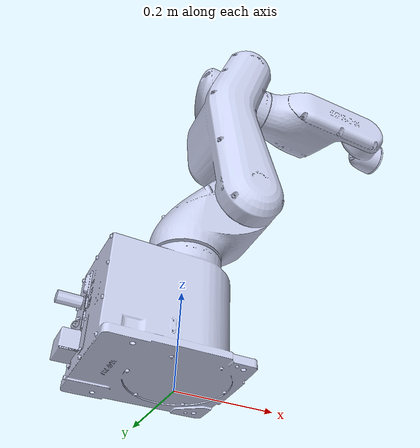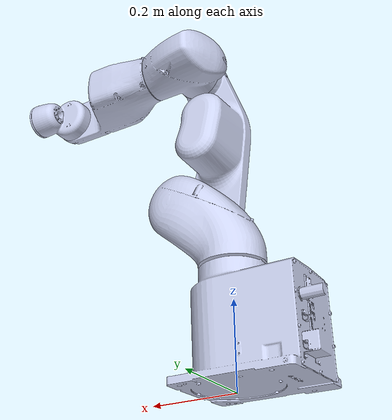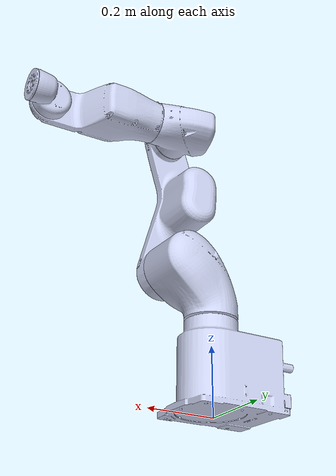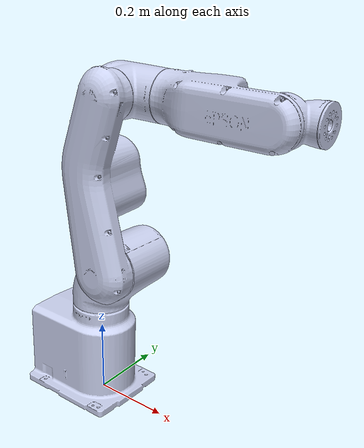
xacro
<?xml version="1.0" encoding="utf-8"?>
<!--
Gunner Cook-Dumas
7/10/25
-->
<robot xmlns:xacro="http://www.ros.org/wiki/xacro">
  <link name="world">
     <origin xyz="0 0 0" rpy="0 0 0"/>
  </link>
  <joint name="world_joint" type="fixed">
    <origin xyz="0 0 0.3" rpy="0 0 0"/>
    <parent link="world"/>
    <child link="base_link"/>
  </joint>

  <link
    name="base_link">
    <inertial>
      <origin
        xyz="-0.044667 -0.0055621 -0.16755"
        rpy="0 0 0" />
      <mass
        value="11.234" />
      <inertia
        ixx="0.091366"
        ixy="0.0001185"
        ixz="-0.0050822"
        iyy="0.12176"
        iyz="-0.00097303"
        izz="0.089699" />
    </inertial>
    <visual>
      <origin
        xyz="0 0 0"
        rpy="0 0 0" />
      <geometry>
        <mesh
          filename="file://$(find epsonvt6_sim)/meshes/base_link.STL" /> <!-- package://epsonvt6_sim/meshes/base_link.STL"-->
      </geometry>
      <material
        name="">
        <color
          rgba="0.79216 0.81961 0.93333 1" />
      </material>
    </visual>
    <collision>
      <origin
        xyz="0 0 0"
        rpy="0 0 0" />
      <geometry>
        <mesh
          filename="file://$(find epsonvt6_sim)/meshes/base_link.STL" />
      </geometry>
    </collision>
  </link>
  <link
    name="swivel_link">
    <inertial>
      <origin
        xyz="0.058809 0.0011943 0.10969"
        rpy="0 0 0" />
      <mass
        value="5.408" />
      <inertia
        ixx="0.027903"
        ixy="0.00011412"
        ixz="-0.0095523"
        iyy="0.035172"
        iyz="-0.00010229"
        izz="0.028875" />
    </inertial>
    <visual>
      <origin
        xyz="0 0 0"
        rpy="0 0 0" />
      <geometry>
        <mesh
          filename="file://$(find epsonvt6_sim)/meshes/swivel_link.STL" />
      </geometry>
      <material
        name="">
        <color
          rgba="0.79216 0.81961 0.93333 1" />
      </material>
    </visual>
    <collision>
      <origin
        xyz="0 0 0"
        rpy="0 0 0" />
      <geometry>
        <mesh
          filename="file://$(find epsonvt6_sim)/meshes/swivel_link.STL" />
      </geometry>
    </collision>
  </link>
  <joint
    name="base_swivel_joint"
    type="continuous">
    <origin
      xyz="0 -0.00083759 -0.023985"
      rpy="-0.034907 0 0" />
    <parent
      link="base_link" />
    <child
      link="swivel_link" />
    <axis
      xyz="0 0 1" />
  </joint>
  <link
    name="swivel_arm_link">
    <inertial>
      <origin
        xyz="-0.0185051285247269 0.0100310897931204 0.208488538519217"
        rpy="0 0 0" />
      <mass
        value="1.67529418945548" />
      <inertia
        ixx="0.0507941794857386"
        ixy="0.000730302175823613"
        ixz="0.000302256342382312"
        iyy="0.0504029422658477"
        iyz="2.07822625557631E-05"
        izz="0.00701923736777324" />
    </inertial>
    <visual>
      <origin
        xyz="0 0 0"
        rpy="0 0 0" />
      <geometry>
        <mesh
          filename="file://$(find epsonvt6_sim)/meshes/swivel_arm_link.STL" />
      </geometry>
      <material
        name="">
        <color
          rgba="0.792156862745098 0.819607843137255 0.933333333333333 1" />
      </material>
    </visual>
    <collision>
      <origin
        xyz="0 0 0"
        rpy="0 0 0" />
      <geometry>
        <mesh
          filename="file://$(find epsonvt6_sim)/meshes/swivel_arm_link.STL" />
      </geometry>
    </collision>
  </link>
  <joint
    name="swivel_arm_joint"
    type="continuous">
    <origin
      xyz="0.1 -0.09 0.149"
      rpy="0 0 0" />
    <parent
      link="swivel_link" />
    <child
      link="swivel_arm_link" />
    <axis
      xyz="0 1 0" />
  </joint>
  <link
    name="wrist_link">
    <inertial>
      <origin
        xyz="0.0214834852241277 0.0641267695907921 1.30220438060435E-06"
        rpy="0 0 0" />
      <mass
        value="1.69585952099927" />
      <inertia
        ixx="0.00399338568390971"
        ixy="-0.00062093013676303"
        ixz="8.00059457252006E-08"
        iyy="0.00511856694601518"
        iyz="-2.25268030979856E-07"
        izz="0.00569306221452427" />
    </inertial>
    <visual>
      <origin
        xyz="0 0 0"
        rpy="0 0 0" />
      <geometry>
        <mesh
          filename="file://$(find epsonvt6_sim)/meshes/wrist_link.STL" />
      </geometry>
      <material
        name="">
        <color
          rgba="0.792156862745098 0.819607843137255 0.933333333333333 1" />
      </material>
    </visual>
    <collision>
      <origin
        xyz="0 0 0"
        rpy="0 0 0" />
      <geometry>
        <mesh
          filename="file://$(find epsonvt6_sim)/meshes/wrist_link.STL" />
      </geometry>
    </collision>
  </link>
  <joint
    name="wrist_joint"
    type="continuous">
    <origin
      xyz="0 0.0216 0.42"
      rpy="0 0 0" />
    <parent
      link="swivel_arm_link" />
    <child
      link="wrist_link" />
    <axis
      xyz="0 1 0" />
  </joint>
  <link
    name="hand_link">
    <inertial>
      <origin
        xyz="0.139593875929977 -0.0246708541903937 5.31294167105401E-06"
        rpy="0 0 0" />
      <mass
        value="3.66276782700147" />
      <inertia
        ixx="0.0106406641258331"
        ixy="0.00669200808710079"
        ixz="2.08535425596285E-06"
        iyy="0.0281948606164287"
        iyz="-4.96579237915869E-07"
        izz="0.031603283969657" />
    </inertial>
    <visual>
      <origin
        xyz="0 0 0"
        rpy="0 0 0" />
      <geometry>
        <mesh
          filename="file://$(find epsonvt6_sim)/meshes/hand_link.STL" />
      </geometry>
      <material
        name="">
        <color
          rgba="0.792156862745098 0.819607843137255 0.933333333333333 1" />
      </material>
    </visual>
    <collision>
      <origin
        xyz="0 0 0"
        rpy="0 0 0" />
      <geometry>
        <mesh
          filename="file://$(find epsonvt6_sim)/meshes/hand_link.STL" />
      </geometry>
    </collision>
  </link>
  <joint
    name="hand_joint"
    type="continuous">
    <origin
      xyz="0.0905 0.06724 0"
      rpy="0 0 0" />
    <parent
      link="wrist_link" />
    <child
      link="hand_link" />
    <axis
      xyz="1 0 0" />
  </joint>
  <link
    name="finger_link">
    <inertial>
      <origin
        xyz="0.0169336580467012 0.0354511451193188 9.15129902445688E-06"
        rpy="0 0 0" />
      <mass
        value="0.59831386207427" />
      <inertia
        ixx="0.000779390408571983"
        ixy="-0.000246549727904644"
        ixz="-6.68846116469283E-08"
        iyy="0.0010025872639828"
        iyz="2.56605352172478E-08"
        izz="0.000993234046313843" />
    </inertial>
    <visual>
      <origin
        xyz="0 0 0"
        rpy="0 0 0" />
      <geometry>
        <mesh
          filename="file://$(find epsonvt6_sim)/meshes/finger_link.STL" />
      </geometry>
      <material
        name="">
        <color
          rgba="0.792156862745098 0.819607843137255 0.933333333333333 1" />
      </material>
    </visual>
    <collision>
      <origin
        xyz="0 0 0"
        rpy="0 0 0" />
      <geometry>
        <mesh
          filename="file://$(find epsonvt6_sim)/meshes/finger_link.STL" />
      </geometry>
    </collision>
  </link>
  <joint
    name="finger_joint"
    type="continuous">
    <origin
      xyz="0.3095 -0.056 0"
      rpy="0 0 0" />
    <parent
      link="hand_link" />
    <child
      link="finger_link" />
    <axis
      xyz="0 1 0" />
  </joint>
  <link
    name="tip_link">
    <inertial>
      <origin
        xyz="-0.00423168170139776 4.6619876124766E-06 1.01786927347303E-05"
        rpy="0 0 0" />
      <mass
        value="0.0516677260625017" />
      <inertia
        ixx="4.64734351994377E-05"
        ixy="2.32934900914114E-15"
        ixz="-3.79244342400176E-10"
        iyy="2.43448563893672E-05"
        iyz="1.49521699734775E-10"
        izz="2.44215854406383E-05" />
    </inertial>
    <visual>
      <origin
        xyz="0 0 0"
        rpy="0 0 0" />
      <geometry>
        <mesh
          filename="file://$(find epsonvt6_sim)/meshes/tip_link.STL" />
      </geometry>
      <material
        name="">
        <color
          rgba="0.792156862745098 0.819607843137255 0.933333333333333 1" />
      </material>
    </visual>
    <collision>
      <origin
        xyz="0 0 0"
        rpy="0 0 0" />
      <geometry>
        <mesh
          filename="file://$(find epsonvt6_sim)/meshes/tip_link.STL" />
      </geometry>
    </collision>
  </link>
  <joint
    name="tip_joint"
    type="continuous">
    <origin
      xyz="0.078 0.055495 0"
      rpy="0 0 0" />
    <parent
      link="finger_link" />
    <child
      link="tip_link" />
    <axis
      xyz="1 0 0" />
  </joint>
</robot>
